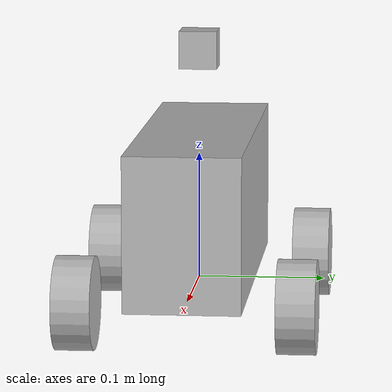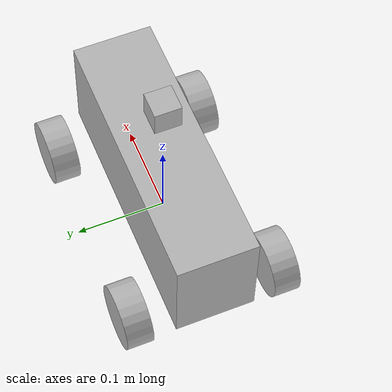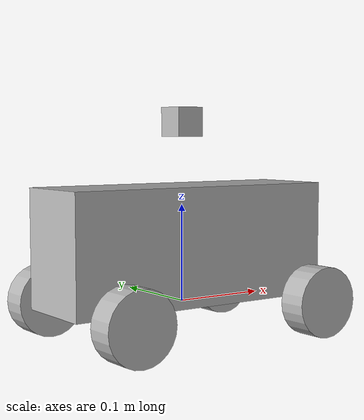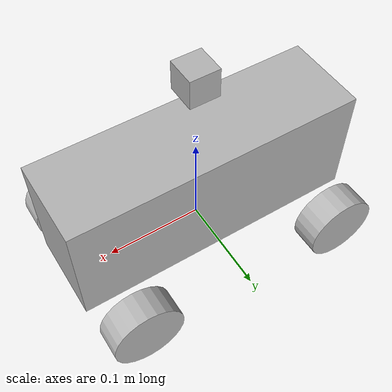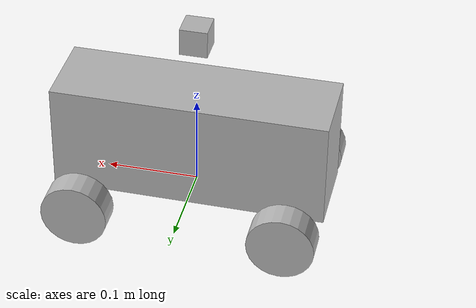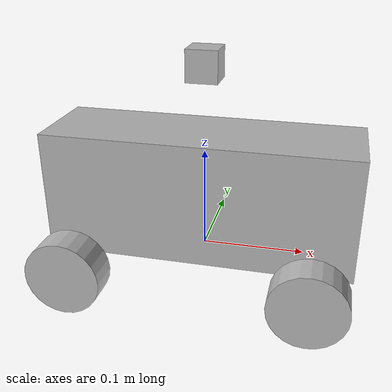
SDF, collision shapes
<?xml version="1.0" ?>
<sdf version="1.8">
  <model name="donkey">
    <pose>0 0 0 0 0 0</pose>
    <self_collide>false</self_collide>
    <static>false</static>
    <allow_auto_disable>false</allow_auto_disable>

    <link name="base_link">
      <inertial>
        <pose >0 0 0 0 0 0</pose>
        <mass>3.0</mass>
        <inertia>
          <ixx>0.0054</ixx>
          <ixy>0</ixy>
          <ixz>0</ixz>
          <iyy>0.0252</iyy>
          <iyz>0</iyz>
          <izz>0.0252</izz>
        </inertia>
      </inertial>
      <visual name="BaseVisual">
        <pose>.1371 0 -.0115 -0.018 0 1.5707</pose>
        <geometry>
          <mesh>
           <uri>meshes/BaseReduced.dae</uri>
          </mesh>
        </geometry>
      </visual>
      <visual name="donkey/TopVisual">
        <pose>.1371 0 -.0115 -0.018 0 1.5707</pose>
        <geometry>
          <mesh>
           <uri>meshes/TopReduced.dae</uri>
          </mesh>
        </geometry>
      </visual>
      <collision name="donkey/BaseCollision">
        <pose>0 0 .06 0 0 0</pose>
        <geometry>
          <box>
            <size>.3 .09 .12</size>
          </box>
        </geometry>
      </collision>
      <visual name="donkey/visual_lidar">
        <pose>0.05 0 .106 0 0 0</pose>
        <geometry>
          <mesh>
           <uri>meshes/STL27L.dae</uri>
          </mesh>
        </geometry>
      </visual>

      <sensor name="imu_sensor" type="imu">
        <always_on>1</always_on>
        <update_rate>50</update_rate>
        <topic>imu</topic>
        <imu>
          <enable_orientation>0</enable_orientation>
          <angular_velocity>
            <x>
              <noise type="gaussian">
                <mean>0</mean>
                <stddev>0.009</stddev>
                <bias_mean>0.00075</bias_mean>
                <bias_stddev>0.005</bias_stddev>
                <dynamic_bias_stddev>0.00002</dynamic_bias_stddev>
                <dynamic_bias_correlation_time>400.0</dynamic_bias_correlation_time>
                <precision>0.00025</precision>
              </noise>
            </x>
            <y>
              <noise type="gaussian">
                <mean>0</mean>
                <stddev>0.009</stddev>
                <bias_mean>0.00075</bias_mean>
                <bias_stddev>0.005</bias_stddev>
                <dynamic_bias_stddev>0.00002</dynamic_bias_stddev>
                <dynamic_bias_correlation_time>400.0</dynamic_bias_correlation_time>
                <precision>0.00025</precision>
              </noise>
            </y>
            <z>
              <noise type="gaussian">
                <mean>0</mean>
                <stddev>0.009</stddev>
                <bias_mean>0.00075</bias_mean>
                <bias_stddev>0.005</bias_stddev>
                <dynamic_bias_stddev>0.00002</dynamic_bias_stddev>
                <dynamic_bias_correlation_time>400.0</dynamic_bias_correlation_time>
                <precision>0.00025</precision>
              </noise>
            </z>
          </angular_velocity>
          <linear_acceleration>
            <x>
              <noise type="gaussian">
                <mean>0</mean>
                <stddev>0.021</stddev>
                <bias_mean>0.05</bias_mean>
                <bias_stddev>0.0075</bias_stddev>
                <dynamic_bias_stddev>0.000375</dynamic_bias_stddev>
                <dynamic_bias_correlation_time>175.0</dynamic_bias_correlation_time>
                <precision>0.005</precision>
              </noise>
            </x>
            <y>
              <noise type="gaussian">
                <mean>0</mean>
                <stddev>0.021</stddev>
                <bias_mean>0.05</bias_mean>
                <bias_stddev>0.0075</bias_stddev>
                <dynamic_bias_stddev>0.000375</dynamic_bias_stddev>
                <dynamic_bias_correlation_time>175.0</dynamic_bias_correlation_time>
                <precision>0.005</precision>
              </noise>
            </y>
            <z>
              <noise type="gaussian">
                <mean>0</mean>
                <stddev>0.021</stddev>
                <bias_mean>0.05</bias_mean>
                <bias_stddev>0.0075</bias_stddev>
                <dynamic_bias_stddev>0.000375</dynamic_bias_stddev>
                <dynamic_bias_correlation_time>175.0</dynamic_bias_correlation_time>
                <precision>0.005</precision>
              </noise>
            </z>
          </linear_acceleration>
        </imu>
      </sensor>

      <sensor name="gpu_lidar" type="gpu_lidar">
        <lidar>
          <scan>
            <horizontal>
              <samples>720</samples>
              <resolution>1</resolution>
              <min_angle>-3.1459</min_angle>
              <max_angle>3.1459</max_angle>
            </horizontal>
            <vertical>
              <samples>12</samples>
              <resolution>1</resolution>
              <min_angle>-0.261799</min_angle>
              <max_angle>0.261799</max_angle>
            </vertical>
          </scan>
          <range>
            <min>0.3</min>
            <max>50</max>
            <resolution>0.01</resolution>
          </range>
          <noise>
            <type>gaussian</type>
            <mean>0</mean>
            <stddev>0.01</stddev>
          </noise>
        </lidar>
        <topic>scan</topic>
        <visualize>true</visualize>
        <update_rate>10</update_rate>
      </sensor>
    </link>

    <link name = "camera_link">
      <pose relative_to="camera_joint">0 0 0 0 0 0</pose>
      <inertial>
        <mass>0.1</mass>
        <inertia>
          <ixx>0.0001</ixx>
          <iyy>0.0001</iyy>
          <izz>0.0001</izz>
        </inertia>
      </inertial>
      <visual name="donkey/camera_rack">
        <geometry>
          <box>
            <size>0.03 0.03 0.03</size>
          </box>
        </geometry>
      </visual>
      <collision name="camera_link/collision">
        <geometry>
          <box>
            <size>0.03 0.03 0.03</size>
          </box>
        </geometry>
      </collision>

      <sensor name="rs_front" type="rgbd_camera">
        <pose>0.122 0 0.257 0 0 0</pose>
        <always_on>1</always_on>
        <update_rate>10</update_rate>
        <camera>
          <horizontal_fov>1.50098</horizontal_fov>
          <lens>
            <intrinsics>
              <!-- fx = fy = width / ( 2 * tan (hfov / 2 ) ) -->
              <fx>343.159</fx>
              <fy>343.159</fy>
              <!-- cx = ( width - 1 ) / 2 -->
              <cx>319.5</cx>
              <!-- cy = ( height - 1 ) / 2 -->
              <cy>179.5</cy>
              <s>0</s>
            </intrinsics>
          </lens>
          <distortion>
            <k1>0.0</k1>
            <k2>0.0</k2>
            <k3>0.0</k3>
            <p1>0.0</p1>
            <p2>0.0</p2>
            <center>0.5 0.5</center>
          </distortion>
          <image>
            <width>480</width>
            <height>320</height>
            <format>R8G8B8</format>
          </image>
          <clip>
            <near>0.01</near>
            <far>300</far>
          </clip>
          <depth_camera>
            <clip>
              <near>0.1</near>
              <far>10</far>
            </clip>
          </depth_camera>
          <noise>
            <type>gaussian</type>
            <mean>0</mean>
            <stddev>0.007</stddev>
          </noise>
        </camera>
        <topic>real_sense</topic>
        <visualize>true</visualize>
        <frame_id>camera_link</frame_id>
      </sensor>
    </link>

    <joint name="camera_joint" type="fixed">
      <pose relative_to="base_link">0 0 0.184 0 0 0</pose>
      <parent>base_link</parent>
      <child>camera_link</child>
      <axis>
        <xyz>0 0 1</xyz>
        <limit>
          <lower>-1.79769e+308</lower>
          <upper>1.79769e+308</upper>
        </limit>
        <dynamics>
          <spring_reference>0</spring_reference>
          <spring_stiffness>0</spring_stiffness>
        </dynamics>
        <use_parent_model_frame>1</use_parent_model_frame>
      </axis>
    </joint>

    <link name="front_left_wheel_link">
      <pose relative_to="front_left_wheel_joint">0 0 0 0 0 0</pose>
      <inertial>
        <mass>.05</mass>
        <inertia>
          <ixx>0.00003331</ixx>
          <ixy>0</ixy>
          <ixz>0</ixz>
          <iyy>0.0000204</iyy>
          <iyz>0</iyz>
          <izz>0.0000204</izz>
        </inertia>
      </inertial>
      <gravity>true</gravity>
      <velocity_decay/>
      <visual name="donkey/FrontLeftWheelVisual">
        <pose>0 0 0 0 0 3.14159</pose>
        <geometry>
          <mesh>
           <uri>meshes/Wheel.dae</uri>
          </mesh>
        </geometry>
      </visual>
      <collision name="donkey/FrontLeftWheelCollision">
        <pose>0 -.015 0 -1.5707 0 0</pose>
        <geometry>
          <cylinder>
            <length>0.03</length>
            <radius>0.0365</radius>
          </cylinder>
        </geometry>
        <surface>
          <friction>
            <ode>
              <mu>0.5</mu>
              <mu2>1.0</mu2>
              <fdir1>0 0 1</fdir1>
            </ode>
          </friction>
        </surface>
      </collision>
    </link>
    <link name="front_left_wheel_steering_link">
      <pose relative_to="front_left_wheel_steering_joint">0 0 0 0 0 0</pose>
      <inertial>
        <mass>0.005</mass>
        <inertia>
          <ixx>0.0000018</ixx>
          <iyy>0.0000018</iyy>
          <izz>0.0000018</izz>
        </inertia>
      </inertial>
    </link>
    <joint name="front_left_wheel_joint" type="revolute">
      <parent>front_left_wheel_steering_link</parent>
      <child>front_left_wheel_link</child>
      <pose relative_to="front_left_wheel_steering_joint">0 0 0 0 0 0</pose>
      <axis>
        <xyz>0 1 0</xyz>
        <limit>
          <lower>-1.79769e+308</lower>
          <upper>1.79769e+308</upper>
        </limit>
        <dynamics>
          <spring_reference>0</spring_reference>
          <spring_stiffness>0</spring_stiffness>
        </dynamics>
        <use_parent_model_frame>1</use_parent_model_frame>
      </axis>
    </joint>
    <joint name="front_left_wheel_steering_joint" type="revolute">
      <parent>base_link</parent>
      <child>front_left_wheel_steering_link</child>
      <pose relative_to="base_link">.112 .10 0 0 0 0</pose>
      <axis>
        <xyz>0 0 1</xyz>
        <limit>
          <lower>-0.6</lower>
          <upper>0.6</upper>
          <velocity>1.0</velocity>
          <effort>25</effort>
        </limit>
        <use_parent_model_frame>1</use_parent_model_frame>
      </axis>
    </joint>

    <link name="front_right_wheel_link">
      <pose relative_to="front_right_wheel_joint">0 0 0 0 0 0</pose>
      <inertial>
        <mass>.05</mass>
        <inertia>
          <ixx>0.00003331</ixx>
          <ixy>0</ixy>
          <ixz>0</ixz>
          <iyy>0.0000204</iyy>
          <iyz>0</iyz>
          <izz>0.0000204</izz>
        </inertia>
      </inertial>
      <gravity>true</gravity>
      <velocity_decay/>
      <visual name="donkey/FrontRightWheelVisual">
        <pose>0 0 0 0 0 0</pose>
        <geometry>
          <mesh>
           <uri>meshes/Wheel.dae</uri>
          </mesh>
        </geometry>
      </visual>
      <collision name="donkey/FrontRightWheelCollision">
        <pose>0 .015 0 -1.5707 0 0</pose>
        <geometry>
          <cylinder>
            <length>0.03</length>
            <radius>0.0365</radius>
          </cylinder>
        </geometry>
        <surface>
          <friction>
            <ode>
              <mu>0.5</mu>
              <mu2>1.0</mu2>
              <fdir1>0 0 1</fdir1>
            </ode>
          </friction>
        </surface>
      </collision>
    </link>
    <link name="front_right_wheel_steering_link">
      <pose relative_to="front_right_wheel_steering_joint">0 0 0 0 0 0</pose>
      <inertial>
        <mass>0.005</mass>
        <inertia>
          <ixx>0.0000018</ixx>
          <iyy>0.0000018</iyy>
          <izz>0.0000018</izz>
        </inertia>
      </inertial>
    </link>
    <joint name="front_right_wheel_joint" type="revolute">
      <parent>front_right_wheel_steering_link</parent>
      <child>front_right_wheel_link</child>
      <pose relative_to="front_right_wheel_steering_joint">0 0 0 0 0 0</pose>
      <axis>
        <xyz>0 1 0</xyz>
        <limit>
          <lower>-1.79769e+308</lower>
          <upper>1.79769e+308</upper>
        </limit>
        <dynamics>
          <spring_reference>0</spring_reference>
          <spring_stiffness>0</spring_stiffness>
        </dynamics>
        <use_parent_model_frame>1</use_parent_model_frame>
      </axis>
    </joint>
    <joint name="front_right_wheel_steering_joint" type="revolute">
      <parent>base_link</parent>
      <child>front_right_wheel_steering_link</child>
      <pose relative_to="base_link">.112 -.10 0 0 0 0</pose>
      <axis>
        <xyz>0 0 1</xyz>
        <limit>
          <lower>-0.6</lower>
          <upper>0.6</upper>
          <velocity>1.0</velocity>
          <effort>25</effort>
        </limit>
        <use_parent_model_frame>1</use_parent_model_frame>
      </axis>
    </joint>

    <joint name="rear_right_wheel_joint" type="revolute">
      <parent>base_link</parent>
      <child>rear_right_wheel_link</child>
      <pose relative_to="base_link">-.1135 -.10 0 0 0 0</pose>
      <axis>
        <xyz>0 1 0</xyz>
        <limit>
          <lower>-1.79769e+308</lower>
          <upper>1.79769e+308</upper>
        </limit>
        <dynamics>
          <spring_reference>0</spring_reference>
          <spring_stiffness>0</spring_stiffness>
        </dynamics>
        <use_parent_model_frame>1</use_parent_model_frame>
      </axis>
    </joint>
    <joint name="rear_left_wheel_joint" type="revolute">
      <parent>base_link</parent>
      <child>rear_left_wheel_link</child>
      <pose relative_to="base_link">-.1135 .10 0 0 0 0</pose>
      <axis>
        <xyz>0 1 0</xyz>
        <limit>
          <lower>-1.79769e+308</lower>
          <upper>1.79769e+308</upper>
        </limit>
        <dynamics>
          <spring_reference>0</spring_reference>
          <spring_stiffness>0</spring_stiffness>
        </dynamics>
        <use_parent_model_frame>1</use_parent_model_frame>
      </axis>
    </joint>
    <link name="rear_right_wheel_link">
      <pose relative_to="rear_right_wheel_joint">0 0 0 0 0 0</pose>
      <inertial>
        <mass>.05</mass>
        <inertia>
          <ixx>0.00003331</ixx>
          <ixy>0</ixy>
          <ixz>0</ixz>
          <iyy>0.0000204</iyy>
          <iyz>0</iyz>
          <izz>0.0000204</izz>
        </inertia>
      </inertial>
      <gravity>true</gravity>
      <velocity_decay/>
      <visual name="RearRightWheelVisual">
        <pose>0 0 0 0 0 0</pose>
        <geometry>
          <mesh>
           <uri>meshes/Wheel.dae</uri>
          </mesh>
        </geometry>
      </visual>
      <collision name="RearRightWheelCollision">
        <pose>0 .015 0 -1.5707 0 0</pose>
        <geometry>
          <cylinder>
            <length>0.03</length>
            <radius>0.0365</radius>
          </cylinder>
        </geometry>
        <surface>
          <friction>
            <ode>
              <mu>0.5</mu>
              <mu2>1.0</mu2>
              <fdir1>0 0 1</fdir1>
            </ode>
          </friction>
        </surface>
      </collision>
    </link>
    <link name="rear_left_wheel_link">
      <pose relative_to="rear_left_wheel_joint">0 0 0 0 0 0</pose>
      <inertial>
        <mass>.05</mass>
        <inertia>
          <ixx>0.00003331</ixx>
          <ixy>0</ixy>
          <ixz>0</ixz>
          <iyy>0.0000204</iyy>
          <iyz>0</iyz>
          <izz>0.0000204</izz>
        </inertia>
      </inertial>
      <gravity>true</gravity>
      <velocity_decay/>
      <visual name="RearLeftWheelVisual">
        <pose>0 0 0 0 0 3.14159</pose>
        <geometry>
          <mesh>
           <uri>meshes/Wheel.dae</uri>
          </mesh>
        </geometry>
      </visual>
      <collision name="RearLeftWheelCollision">
        <pose>0 -.015 0 -1.5707 0 0</pose>
        <geometry>
          <cylinder>
            <length>0.03</length>
            <radius>0.0365</radius>
          </cylinder>
        </geometry>
        <surface>
          <friction>
            <ode>
              <mu>0.5</mu>
              <mu2>1.0</mu2>
              <fdir1>0 0 1</fdir1>
            </ode>
          </friction>
        </surface>
      </collision>
    </link>

    <!-- Add ackermann steering plugin -->
    <plugin
      filename="gz-sim-ackermann-steering-system"
      name="gz::sim::systems::AckermannSteering">
      <left_joint>front_left_wheel_joint</left_joint>
      <left_joint>rear_left_wheel_joint</left_joint>
      <right_joint>front_right_wheel_joint</right_joint>
      <right_joint>front_right_wheel_joint</right_joint>
      <left_steering_joint>front_left_wheel_steering_joint</left_steering_joint>
      <right_steering_joint>front_right_wheel_steering_joint</right_steering_joint>
      <kingpin_width>0.199</kingpin_width>
      <steering_limit>0.4</steering_limit>
      <wheel_base>.2255</wheel_base>
      <wheel_separation>.2</wheel_separation>
      <wheel_radius>0.0365</wheel_radius>
      <min_velocity>-10.0</min_velocity>
      <max_velocity>10.0</max_velocity>
      <min_acceleration>-10</min_acceleration>
      <max_acceleration>10</max_acceleration>
      <topic>/cmd_vel</topic>
    </plugin>

    <!-- Add pose publisher plugin -->
    <plugin filename="gz-sim-pose-publisher-system"
      name="gz::sim::systems::PosePublisher">
      <publish_link_pose>true</publish_link_pose>
      <publish_sensor_pose>true</publish_sensor_pose>
      <publish_model_pose>true</publish_model_pose>
      <use_pose_vector_msg>true</use_pose_vector_msg>
      <static_publisher>true</static_publisher>
      <publish_tf>true</publish_tf>
      <static_tf_topic>tf_static</static_tf_topic>
      <static_update_frequency>1</static_update_frequency>
    </plugin>

    <!-- Add odometry publisher plugin -->
    <plugin filename="gz-sim-odometry-publisher-system"
      name="gz::sim::systems::OdometryPublisher">
      <odom_frame>odom</odom_frame>
      <robot_base_frame>donkey</robot_base_frame>
      <odom_topic>odom</odom_topic>
      <dimensions>3</dimensions>
    </plugin>

    <plugin filename="gz-sim-joint-state-publisher-system" name="gz::sim::systems::JointStatePublisher"></plugin>

  </model>
</sdf>
